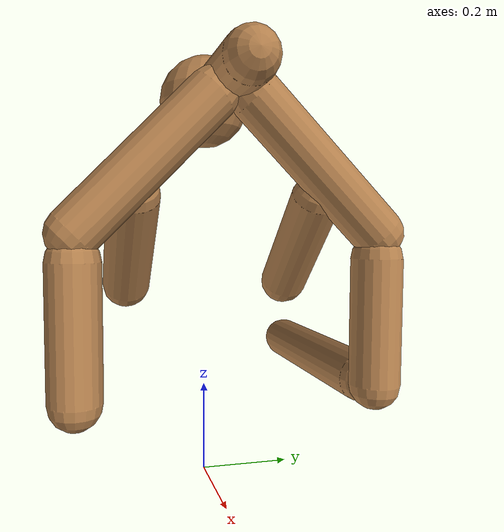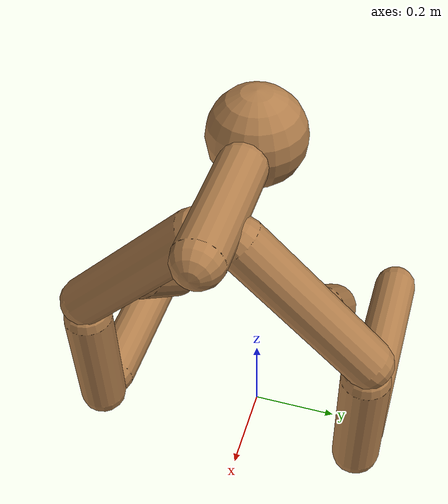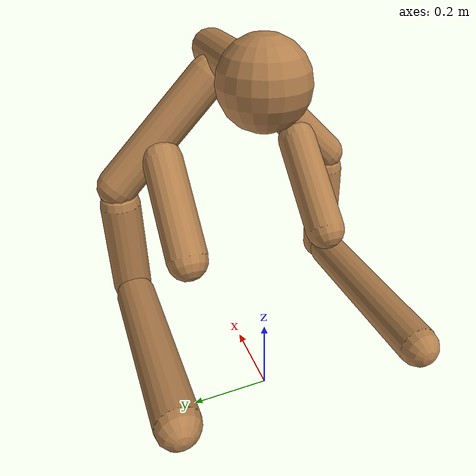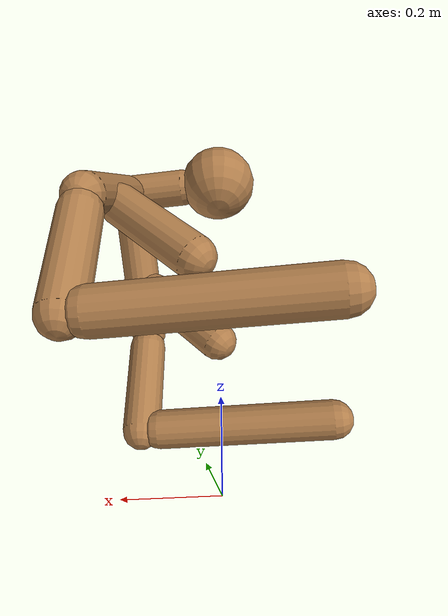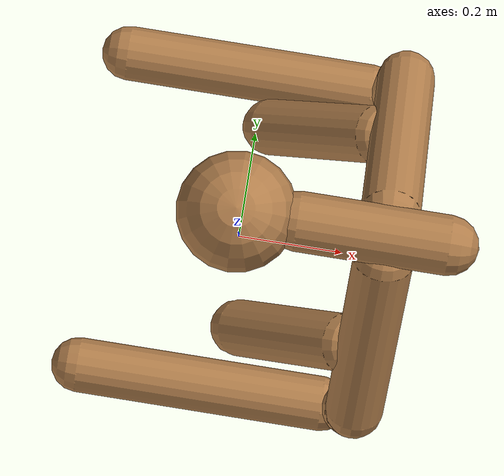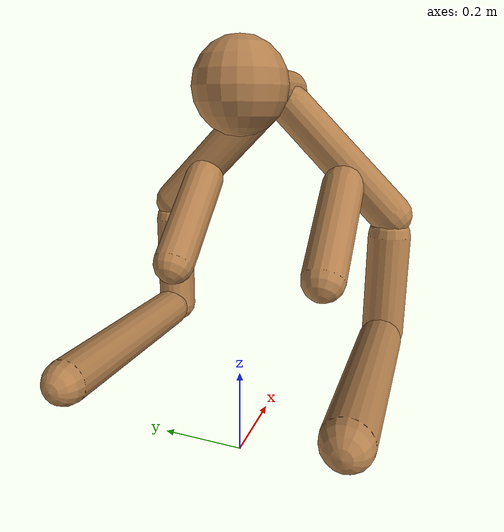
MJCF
<?xml version='1.0' encoding='UTF-8'?>
<!-- Universal Animal Template: unimal -->
<mujoco model="unimal">
  <compiler angle="degree"/>
  <size njmax="2000" nconmax="500"/>
  <option timestep=".005">
    <flag filterparent="disable"/>
  </option>
  <!-- Common defaults to make search space tractable -->
  <default>
    <!-- Define motor defaults -->
    <motor ctrlrange="-1 1" ctrllimited="true"/>
    <!-- Define joint defaults -->
    <default class="normal_joint">
      <joint type="hinge" damping="1" stiffness="1" armature="1" limited="true" range="-120 120" solimplimit="0 0.99 0.01"/>
    </default>
    <default class="walker_joint">
      <joint type="hinge" damping="0.2" stiffness="1" armature=".01" limited="true" range="-120 120" solimplimit="0 0.99 0.01"/>
    </default>
    <default class="stiff_joint">
      <joint type="hinge" damping="5" stiffness="10" armature=".01" limited="true" solimplimit="0 0.99 0.01"/>
    </default>
    <default class="free">
      <joint limited="false" damping="0" armature="0" stiffness="0"/>
    </default>
    <default class="growth_site">
      <site size="1e-6 1e-6 1e-6"/>
    </default>
    <default class="torso_growth_site">
      <site size="1e-6 1e-6 1e-6"/>
    </default>
    <default class="mirror_growth_site">
      <site size="1e-6 1e-6 1e-6"/>
    </default>
    <default class="btm_pos_site">
      <site size="1e-6 1e-6 1e-6"/>
    </default>
    <default class="box_face_site">
      <site size="1e-6 1e-6 1e-6"/>
    </default>
    <default class="imu_vel">
      <site type="box" size="0.05" rgba="1 0 0 0"/>
    </default>
    <default class="touch_site">
      <site group="3" rgba="0 0 1 .3"/>
    </default>
    <default class="food_site">
      <site material="food" size="0.15"/>
    </default>
    <!-- Define geom defaults -->
    <geom type="capsule" condim="3" friction="0.7 0.1 0.1" material="self"/>
  </default>
  <worldbody>
    <light diffuse="1 1 1" directional="true" exponent="1" pos="0 0 8" specular="0.1 0.1 0.1" dir="0 0 -1"/>
    <!-- Programatically generated xml goes here -->
    <body name="torso/0" pos="0 0 0.84">
      <joint name="root" type="free" class="free"/>
      <site name="root" class="imu_vel"/>
      <geom name="torso/0" type="sphere" size="0.1" condim="3" density="700"/>
      <camera name="side" pos="0 -7 2" xyaxes="1 0 0 0 1 2" mode="trackcom"/>
      <site name="torso/0" class="growth_site" pos="0 0 0"/>
      <site name="torso/btm_pos/0" class="btm_pos_site" pos="0 0 -0.1"/>
      <site name="torso/touch/0" class="touch_site" size="0.11"/>
      <site name="torso/horizontal_y/0" class="torso_growth_site" pos="-0.1 0 0"/>
      <body name="limb/6" pos="0.1 0.0 0.0">
        <joint name="limbx/6" type="hinge" class="normal_joint" range="-30 60" pos="-0.05 0.0 0.0" axis="0.0 0.0 1.0"/>
        <joint name="limby/6" type="hinge" class="normal_joint" range="-30 0" pos="-0.05 0.0 0.0" axis="-0.0 1.0 0.0"/>
        <geom name="limb/6" type="capsule" fromto="0.0 0.0 0.0 0.25 0.0 0.0" size="0.05" density="1000"/>
        <site name="limb/mid/6" class="growth_site" pos="0.15 0.0 0.0"/>
        <site name="limb/btm/6" class="growth_site" pos="0.25 0.0 0.0"/>
        <site name="limb/btm_pos/6" class="btm_pos_site" pos="0.25 0.0 0.0"/>
        <site name="limb/touch/6" class="touch_site" size="0.060000000000000005" fromto="0.0 0.0 0.0 0.25 0.0 0.0" type="capsule"/>
        <body name="limb/20" pos="0.15 0.04 -0.04">
          <joint name="limbx/20" type="hinge" class="normal_joint" range="-60 0" pos="0.0 -0.04 0.04" axis="1.0 0.0 0.0"/>
          <geom name="limb/20" type="capsule" fromto="0.0 0.0 0.0 0.0 0.25 -0.25" size="0.05" density="1000"/>
          <site name="limb/mid/20" class="mirror_growth_site" pos="0.0 0.14 -0.14"/>
          <site name="limb/btm/20" class="mirror_growth_site" pos="0.0 0.25 -0.25"/>
          <site name="limb/btm_pos/20" class="btm_pos_site" pos="0.0 0.28 -0.28"/>
          <site name="limb/touch/20" class="touch_site" size="0.060000000000000005" fromto="0.0 0.0 0.0 0.0 0.25 -0.25" type="capsule"/>
          <body name="limb/24" pos="0.0 0.25 -0.3">
            <joint name="limby/24" type="hinge" class="normal_joint" range="-30 60" pos="0.0 0.0 0.05" axis="0.0 1.0 0.0"/>
            <geom name="limb/24" type="capsule" fromto="0.0 0.0 0.0 0.0 0.0 -0.25" size="0.05" density="1000"/>
            <site name="limb/mid/24" class="mirror_growth_site" pos="0.0 0.0 -0.15"/>
            <site name="limb/btm/24" class="mirror_growth_site" pos="0.0 0.0 -0.25"/>
            <site name="limb/btm_pos/24" class="btm_pos_site" pos="0.0 0.0 -0.3"/>
            <site name="limb/touch/24" class="touch_site" size="0.060000000000000005" fromto="0.0 0.0 0.0 0.0 0.0 -0.25" type="capsule"/>
            <body name="limb/26" pos="-0.05 0.0 -0.25">
              <joint name="limbx/26" type="hinge" class="normal_joint" range="-30 60" pos="0.05 0.0 0.0" axis="0.0 0.0 -1.0"/>
              <geom name="limb/26" type="capsule" fromto="0.0 0.0 0.0 -0.45 0.0 0.0" size="0.05" density="1000"/>
              <site name="limb/mid/26" class="mirror_growth_site" pos="-0.25 0.0 0.0"/>
              <site name="limb/btm/26" class="mirror_growth_site" pos="-0.45 0.0 0.0"/>
              <site name="limb/btm_pos/26" class="btm_pos_site" pos="-0.5 0.0 0.0"/>
              <site name="limb/touch/26" class="touch_site" size="0.060000000000000005" fromto="0.0 0.0 0.0 -0.45 0.0 0.0" type="capsule"/>
            </body>
          </body>
          <body name="limb/28" pos="-0.04 0.14 -0.18000000000000002">
            <joint name="limbx/28" type="hinge" class="normal_joint" range="0 45" pos="0.04 0.0 0.04" axis="0.7071 0.0 -0.7071"/>
            <joint name="limby/28" type="hinge" class="normal_joint" range="-30 30" pos="0.04 0.0 0.04" axis="0.0 1.0 0.0"/>
            <geom name="limb/28" type="capsule" fromto="0.0 0.0 0.0 -0.18 0.0 -0.18" size="0.05" density="1000"/>
            <site name="limb/mid/28" class="mirror_growth_site" pos="-0.11 0.0 -0.11"/>
            <site name="limb/btm/28" class="mirror_growth_site" pos="-0.18 0.0 -0.18"/>
            <site name="limb/btm_pos/28" class="btm_pos_site" pos="-0.21 0.0 -0.21"/>
            <site name="limb/touch/28" class="touch_site" size="0.060000000000000005" fromto="0.0 0.0 0.0 -0.18 0.0 -0.18" type="capsule"/>
          </body>
        </body>
        <body name="limb/21" pos="0.15 -0.04 -0.04">
          <joint name="limbx/21" type="hinge" class="normal_joint" range="-60 0" pos="0.0 0.04 0.04" axis="1.0 0.0 -0.0"/>
          <geom name="limb/21" type="capsule" fromto="0.0 0.0 0.0 0.0 -0.25 -0.25" size="0.05" density="1000"/>
          <site name="limb/mid/21" class="mirror_growth_site" pos="0.0 -0.14 -0.14"/>
          <site name="limb/btm/21" class="mirror_growth_site" pos="0.0 -0.25 -0.25"/>
          <site name="limb/btm_pos/21" class="btm_pos_site" pos="0.0 -0.28 -0.28"/>
          <site name="limb/touch/21" class="touch_site" size="0.060000000000000005" fromto="0.0 0.0 0.0 0.0 -0.25 -0.25" type="capsule"/>
          <body name="limb/25" pos="0.0 -0.25 -0.3">
            <joint name="limby/25" type="hinge" class="normal_joint" range="-30 60" pos="0.0 0.0 0.05" axis="0.0 1.0 0.0"/>
            <geom name="limb/25" type="capsule" fromto="0.0 0.0 0.0 0.0 0.0 -0.25" size="0.05" density="1000"/>
            <site name="limb/mid/25" class="mirror_growth_site" pos="0.0 0.0 -0.15"/>
            <site name="limb/btm/25" class="mirror_growth_site" pos="0.0 0.0 -0.25"/>
            <site name="limb/btm_pos/25" class="btm_pos_site" pos="0.0 0.0 -0.3"/>
            <site name="limb/touch/25" class="touch_site" size="0.060000000000000005" fromto="0.0 0.0 0.0 0.0 0.0 -0.25" type="capsule"/>
            <body name="limb/27" pos="-0.05 0.0 -0.25">
              <joint name="limbx/27" type="hinge" class="normal_joint" range="-30 60" pos="0.05 0.0 0.0" axis="0.0 0.0 -1.0"/>
              <geom name="limb/27" type="capsule" fromto="0.0 0.0 0.0 -0.45 0.0 0.0" size="0.05" density="1000"/>
              <site name="limb/mid/27" class="mirror_growth_site" pos="-0.25 0.0 0.0"/>
              <site name="limb/btm/27" class="mirror_growth_site" pos="-0.45 0.0 0.0"/>
              <site name="limb/btm_pos/27" class="btm_pos_site" pos="-0.5 0.0 0.0"/>
              <site name="limb/touch/27" class="touch_site" size="0.060000000000000005" fromto="0.0 0.0 0.0 -0.45 0.0 0.0" type="capsule"/>
            </body>
          </body>
          <body name="limb/29" pos="-0.04 -0.14 -0.18000000000000002">
            <joint name="limbx/29" type="hinge" class="normal_joint" range="0 45" pos="0.04 0.0 0.04" axis="0.7071 0.0 -0.7071"/>
            <joint name="limby/29" type="hinge" class="normal_joint" range="-30 30" pos="0.04 0.0 0.04" axis="0.0 1.0 0.0"/>
            <geom name="limb/29" type="capsule" fromto="0.0 0.0 0.0 -0.18 0.0 -0.18" size="0.05" density="1000"/>
            <site name="limb/mid/29" class="mirror_growth_site" pos="-0.11 0.0 -0.11"/>
            <site name="limb/btm/29" class="mirror_growth_site" pos="-0.18 0.0 -0.18"/>
            <site name="limb/btm_pos/29" class="btm_pos_site" pos="-0.21 0.0 -0.21"/>
            <site name="limb/touch/29" class="touch_site" size="0.060000000000000005" fromto="0.0 0.0 0.0 -0.18 0.0 -0.18" type="capsule"/>
          </body>
        </body>
      </body>
    </body>
  </worldbody>
  <actuator>
    <motor joint="limbx/6" gear="150" name="limbx/6"/>
    <motor joint="limby/6" gear="200" name="limby/6"/>
    <motor joint="limbx/20" gear="250" name="limbx/20"/>
    <motor joint="limby/24" gear="300" name="limby/24"/>
    <motor joint="limbx/26" gear="250" name="limbx/26"/>
    <motor joint="limbx/28" gear="150" name="limbx/28"/>
    <motor joint="limby/28" gear="150" name="limby/28"/>
    <motor joint="limbx/21" gear="250" name="limbx/21"/>
    <motor joint="limby/25" gear="300" name="limby/25"/>
    <motor joint="limbx/27" gear="250" name="limbx/27"/>
    <motor joint="limbx/29" gear="150" name="limbx/29"/>
    <motor joint="limby/29" gear="150" name="limby/29"/>
  </actuator>
  <sensor>
    <accelerometer name="torso_accel" site="root"/>
    <gyro name="torso_gyro" site="root"/>
    <velocimeter name="torso_vel" site="root"/>
    <subtreeangmom name="unimal_am" body="torso/0"/>
    <touch name="torso/0" site="torso/touch/0"/>
    <touch name="limb/6" site="limb/touch/6"/>
    <touch name="limb/20" site="limb/touch/20"/>
    <touch name="limb/24" site="limb/touch/24"/>
    <touch name="limb/26" site="limb/touch/26"/>
    <touch name="limb/28" site="limb/touch/28"/>
    <touch name="limb/21" site="limb/touch/21"/>
    <touch name="limb/25" site="limb/touch/25"/>
    <touch name="limb/27" site="limb/touch/27"/>
    <touch name="limb/29" site="limb/touch/29"/>
  </sensor>
  <!-- Add hfield assets -->
  <asset/>
  <!-- List of contacts to exclude -->
  <contact>
    <exclude name="limb/20:limb/21" body1="limb/20" body2="limb/21"/>
  </contact>
  <!-- Define material, texture etc -->
  <asset>
    <material name="grid" texture="grid" texrepeat="1 1" texuniform="true" reflectance="0.1"/>
    <material name="hfield" texture="hfield" texrepeat="1 1" texuniform="true" reflectance="0.1"/>
    <material name="wall" texture="wall" texrepeat="1 1" texuniform="true" reflectance=".5"/>
    <material name="platform" texture="platform" texrepeat="1 1" texuniform="true" reflectance=".5"/>
    <material name="boundary" texture="boundary" texrepeat="1 1" texuniform="true" reflectance=".5"/>
    <material name="jump" texture="jump" texrepeat="1 1" texuniform="true" reflectance=".5"/>
    <material name="goal" rgba="1 0 0 1"/>
    <material name="food" rgba="0 0 1 1" emission="1"/>
    <material name="init_position" rgba="0 1 0 0.7"/>
    <material name="self" rgba=".7 .5 .3 1"/>
    <material name="self_invisible" rgba=".7 .5 .3 0"/>
    <material name="self_default" rgba=".7 .5 .3 1"/>
    <material name="self_highlight" rgba="0 .5 .3 1"/>
    <material name="effector" rgba=".7 .4 .2 1"/>
    <material name="effector_default" rgba=".7 .4 .2 1"/>
    <material name="effector_highlight" rgba="0 .5 .3 1"/>
    <material name="decoration" rgba=".3 .5 .7 1"/>
    <material name="eye" rgba="0 .2 1 1"/>
    <material name="target" rgba=".6 .3 .3 1"/>
    <material name="target_default" rgba=".6 .3 .3 1"/>
    <material name="target_highlight" rgba=".6 .3 .3 .4"/>
    <material name="site" rgba=".5 .5 .5 .3"/>
    <material name="ball" texture="ball"/>
  </asset>
  <asset>
    <texture name="grid" type="2d" builtin="checker" rgb1="0.4 0.4 0.4" rgb2="0.4 0.4 0.4" width="300" height="300" mark="edge" markrgb="0.2 0.2 0.2"/>
    <texture name="hfield" type="2d" builtin="checker" rgb1="0.4 0.4 0.4" rgb2="0.4 0.4 0.4" width="300" height="300" mark="edge" markrgb="0.2 0.2 0.2"/>
    <texture name="wall" type="2d" builtin="flat" rgb1="0.9 0.7 0" rgb2="0.9 0.7 0" width="300" height="300"/>
    <texture name="platform" type="2d" builtin="flat" rgb1="0.3 0 0.8" rgb2="0.3 0 0.8" width="300" height="300"/>
    <texture name="boundary" type="2d" builtin="flat" rgb1="0.3 0.3 0.3" rgb2="0.3 0.3 0.3" width="300" height="300"/>
    <texture name="jump" type="2d" builtin="flat" rgb1="0.3 0.3 0.3" rgb2="0.3 0.3 0.3" width="300" height="300"/>
    <texture name="skybox" type="skybox" builtin="gradient" rgb1="1 1 1" rgb2="0.6 0.6 0.6" width="800" height="800"/>
    <texture name="ball" builtin="checker" mark="cross" width="151" height="151" rgb1="0.1 0.1 0.1" rgb2="0.9 0.9 0.9" markrgb="1 1 1"/>
  </asset>
  <visual>
    <headlight ambient="0.6 0.6 0.6" diffuse="0.3 0.3 0.3" specular="0 0 0"/>
    <map znear=".01" shadowclip="0.5"/>
    <quality shadowsize="16384"/>
  </visual>
</mujoco>
